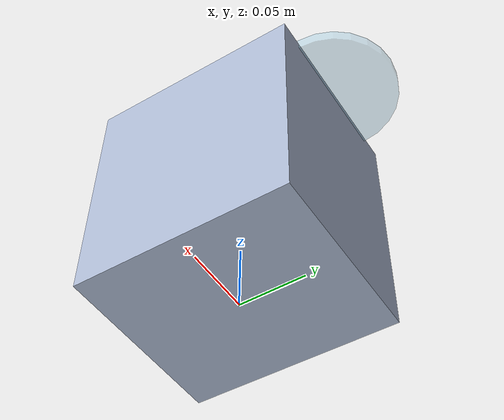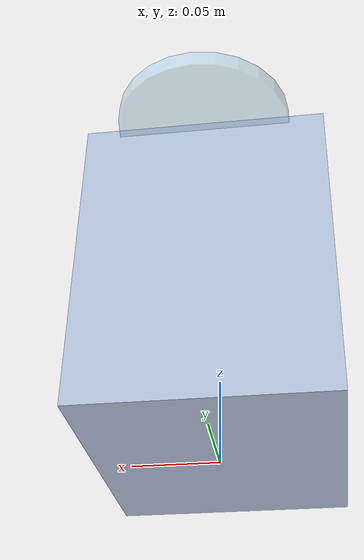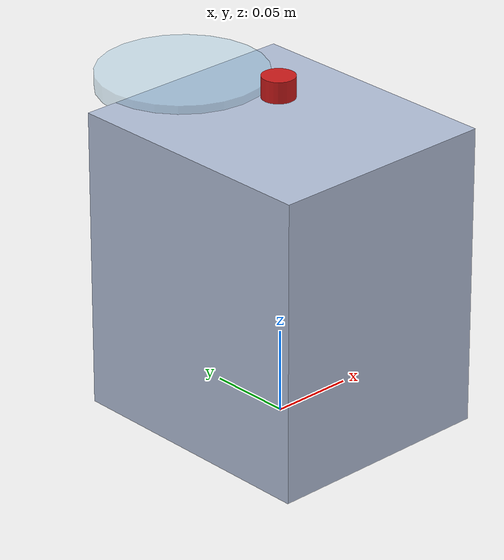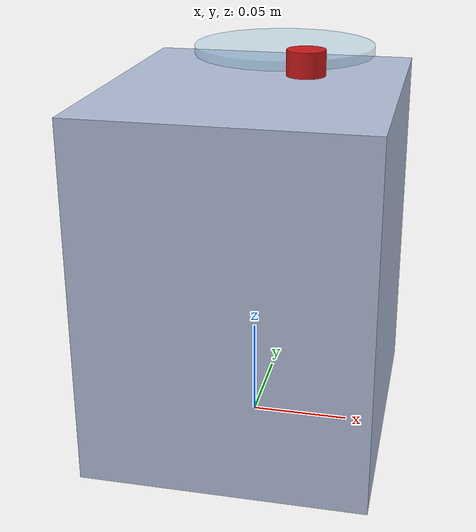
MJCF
<?xml version="1.0" encoding="utf-8"?>
<mujoco model="nanoparticle_synthesizer">
  <compiler angle="radian" autolimits="true"/>
  <default>
    <default class="body"><geom contype="1" conaffinity="1"/></default>
  </default>
  <worldbody>
    <body name="base">
      <geom type="box" size="0.07 0.08 0.09" pos="0 0 0.09" rgba="0.7 0.75 0.85 1" class="body"/>
      <geom type="box" size="0.021 0.004 0.0225" pos="-0.035 -0.07200000000000001 0.135" rgba="0.9 0.7 0.1 1" class="body"/>
      <geom type="cylinder" size="0.01 0.008" pos="0.021 0.024 0.185" rgba="0.8 0.1 0.1 1" class="body"/>
      <body name="reactor_lid" pos="0 0.08 0.18">
        <joint name="reactor_lid_joint" type="hinge" axis="1 0 0" range="0 1.6" damping="0.3" frictionloss="0.3"/>
  <geom type="cylinder" size="0.05 0.005" pos="0 0 0" rgba="0.6 0.8 0.9 0.4" class="body"/>
      </body>
    </body>
  </worldbody>
</mujoco>
